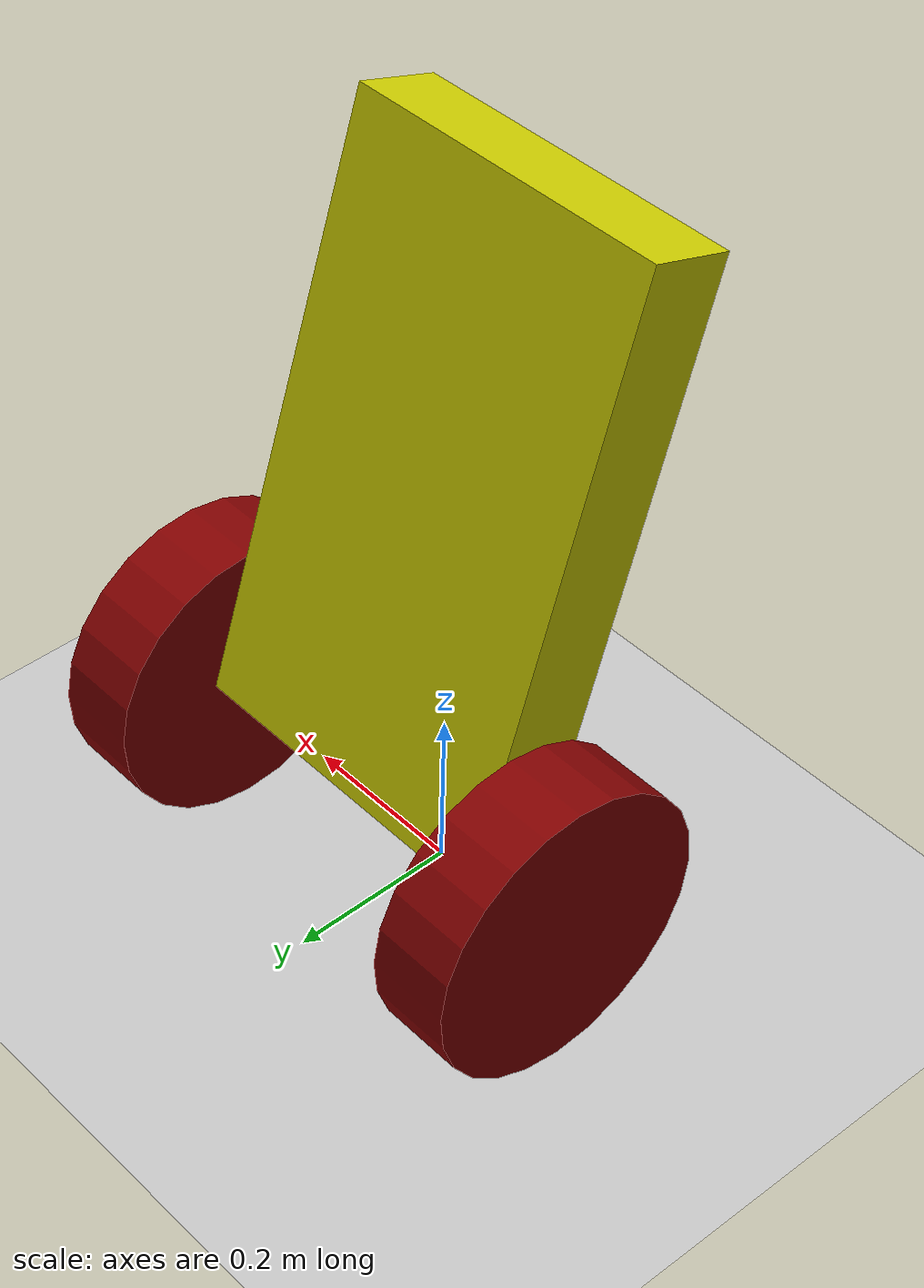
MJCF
<mujoco>
    <asset>
        <texture name="tex-checker" type="2d" builtin="checker" rgb1=".7 .7 .7" rgb2=".8 .8 .8" width="100" height="100"/>
        <material name="color-yellow" rgba="0.8 0.8 0.0 .9"/>
        <material name="color-red" rgba="0.5 0.0 0.0 .9"/>
        <material name="mat-plane" texture="tex-checker" texrepeat="10 10" texuniform="true"/>
    </asset>
    <worldbody>
        <camera name="side_cam" pos="20 0 0.1" euler="90 90 0"/>
        <light diffuse=".5 .5 .5" pos="0 0 20" dir="0 0 -1"/>
        <geom type="plane" size="50 50 0.1" material="mat-plane"/>
        <body name="chassis" pos="0 0 0.525" quat="1 0.15 0 0">
            <joint type="free"/>
            <geom name="chassis-geom" type="box" size=".2 .05 .35" material="color-yellow" mass="1.0"/>
            <body name="left-wheel" pos="-0.25 0.002 -0.35">
                <joint name="left-wheel-joint" type="hinge" axis="1 0 0" damping="0.0002" frictionloss="0.00005"/>
                <geom name="left-wheel-geom" type="cylinder" size="0.17 0.0488" material="color-red" mass="1.8" euler="0 90 0"/>
            </body>
            <body name="right-wheel" pos="0.25 0.002 -0.35">
                <joint name="right-wheel-joint" type="hinge" axis="1 0 0" damping="0.0002" frictionloss="0.00005"/>
                <geom name="right-wheel-geom" type="cylinder" size="0.17 0.0488" material="color-red" mass="1.8" euler="0 90 0"/>
            </body>
            <site name="imu" pos="0 0 0" size="0.005" rgba="1 0 0 0.5"/>
        </body>
    </worldbody>
    <sensor>
        <gyro name="imu_gyro" site="imu"/>
    </sensor>
    <actuator>
        <motor name="left-motor" joint="left-wheel-joint" gear="1.0" ctrllimited="true" ctrlrange="-80.0 80.0"/>
        <motor name="right-motor" joint="right-wheel-joint" gear="1.0" ctrllimited="true" ctrlrange="-80.0 80.0"
        />
    </actuator>
</mujoco>
